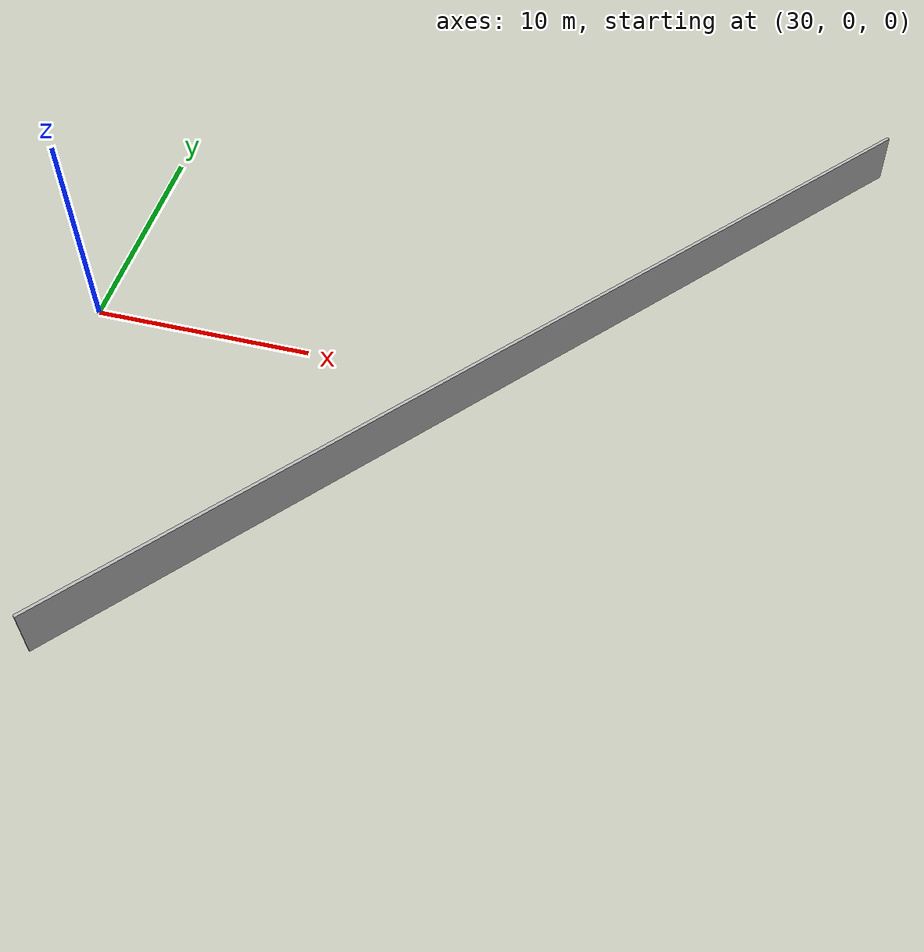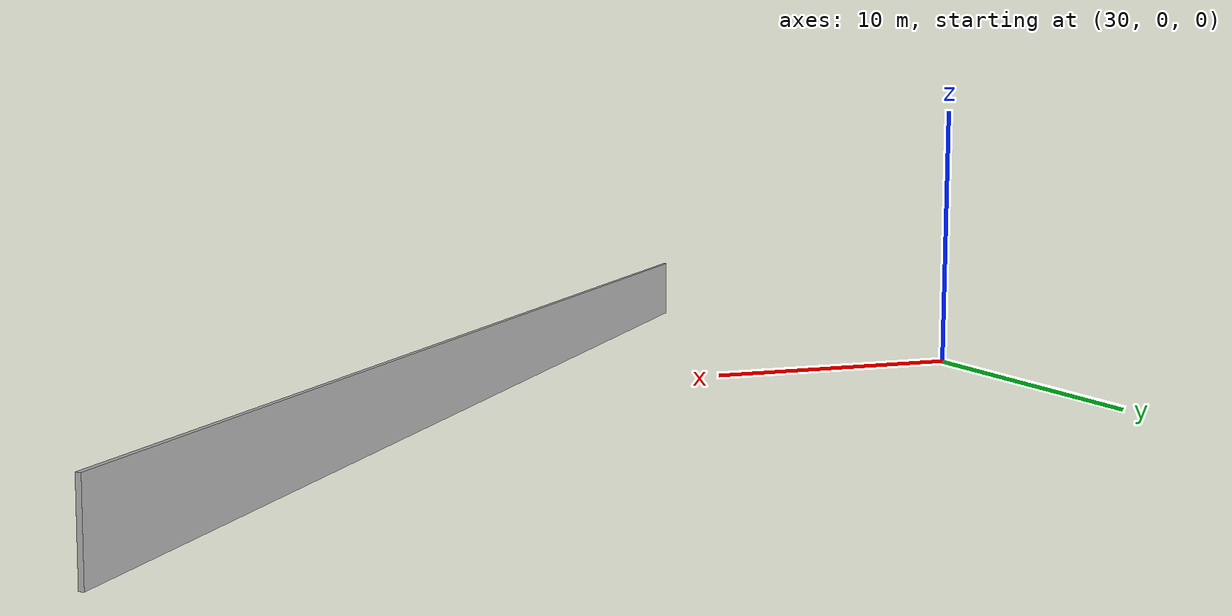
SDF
<?xml version="1.0" ?>
<sdf version="1.6">
  <model name="sps_1144">
    <pose frame="">0 0 0 0 -0 0</pose>
    <static>0</static>
    <self_collide>0</self_collide>
    <allow_auto_disable>0</allow_auto_disable>
    <link name="Wall212">
      <kinematic>0</kinematic>
      <gravity>1</gravity>
      <self_collide>0</self_collide>
      <collision name="collision">
        <geometry>
          <box>
            <size>45.4402 0.15 2.5</size>
          </box>
        </geometry>
        <pose frame="">0 0 0 0 -0 0</pose>
      </collision>
      <visual name="visual">
        <geometry>
          <box>
            <size>45.4402 0.15 2.5</size>
          </box>
        </geometry>
        <pose frame="">0 0 0 0 -0 0</pose>
        <cast_shadows>1</cast_shadows>
        <transparency>0.0</transparency>
      </visual>
      <pose frame="">49.0448 0.464349 1.25 0 0 -2.26727</pose>
    </link>
  </model>
</sdf>
